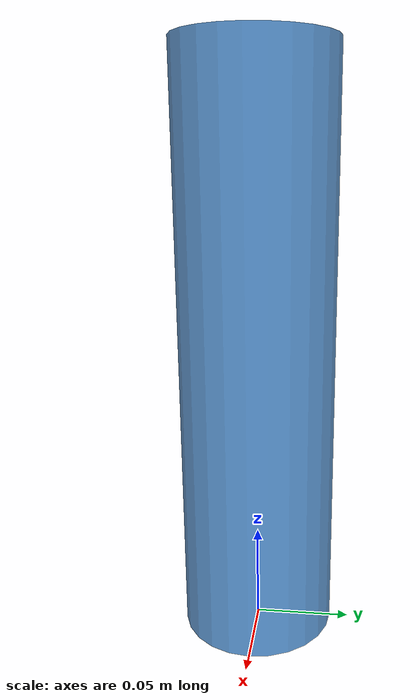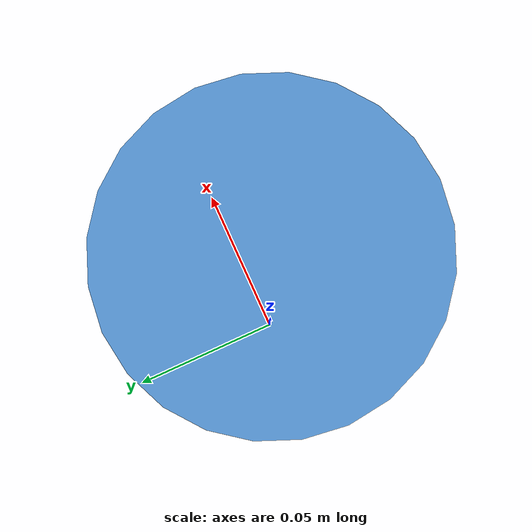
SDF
<?xml version="1.0"?>
<sdf version="1.6">
  <model name="bottle">
    <static>true</static>
    <link name="link">
      <pose>0 0 0.15 0 0 0</pose>
      <collision name="collision">
        <geometry>
          <cylinder>
            <radius>0.04</radius>
            <length>0.3</length>
          </cylinder>
        </geometry>
      </collision>
      <visual name="visual">
        <geometry>
          <cylinder>
            <radius>0.04</radius>
            <length>0.3</length>
          </cylinder>
        </geometry>
        <material>
          <ambient>0.2 0.5 0.8 0.8</ambient>
          <diffuse>0.2 0.5 0.8 0.8</diffuse>
        </material>
      </visual>
    </link>
  </model>
</sdf>
